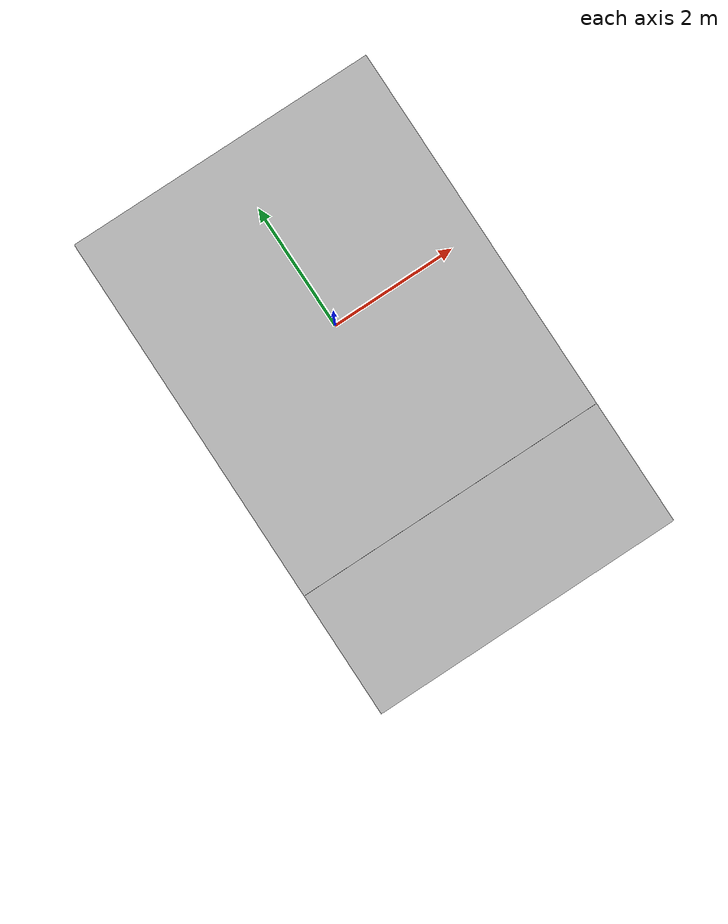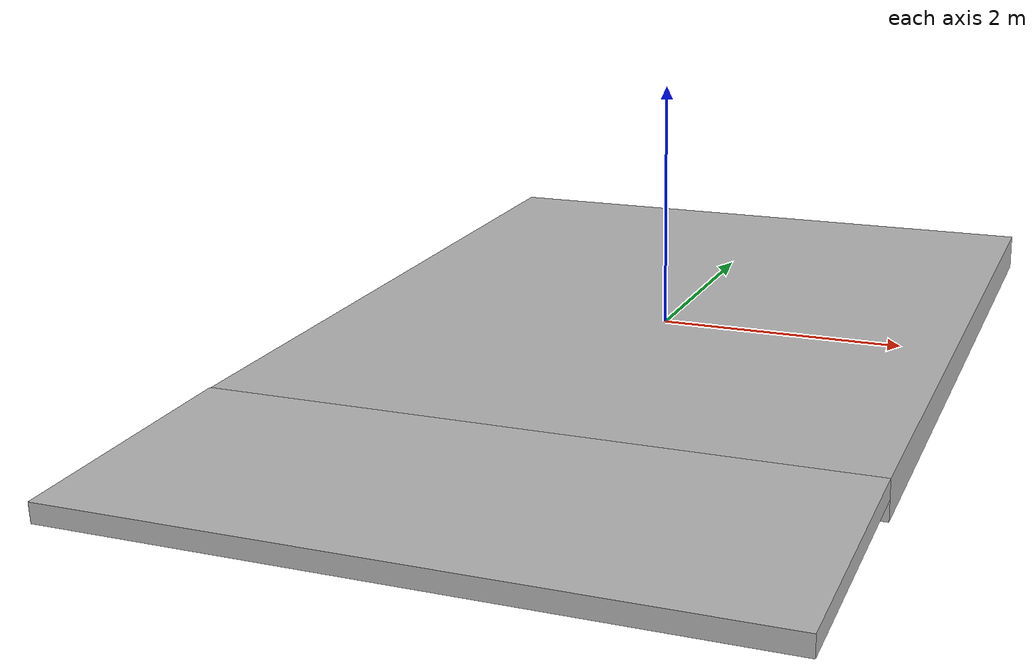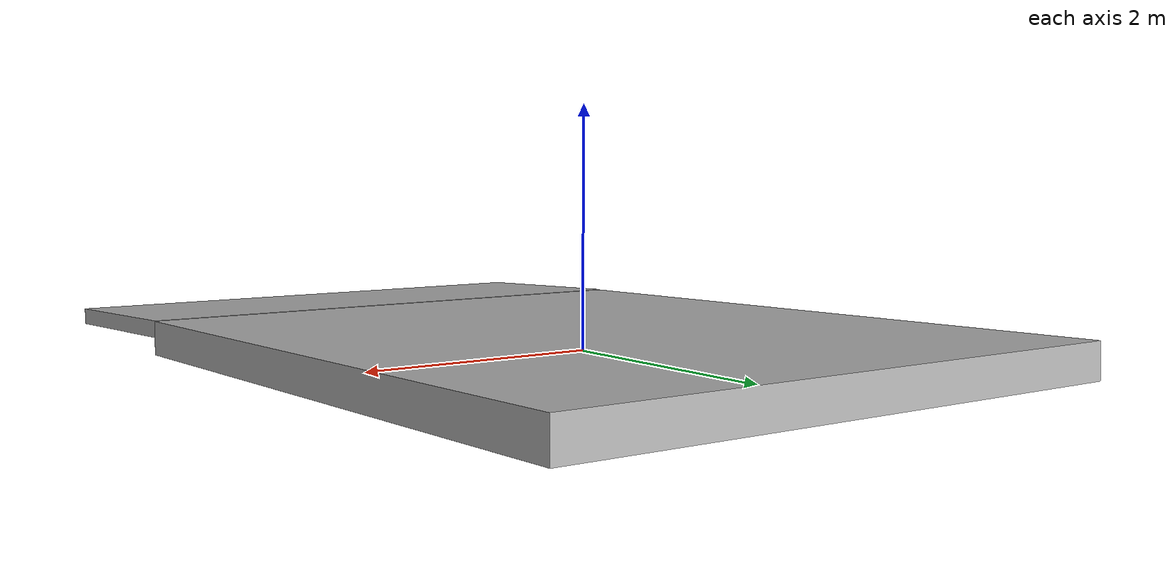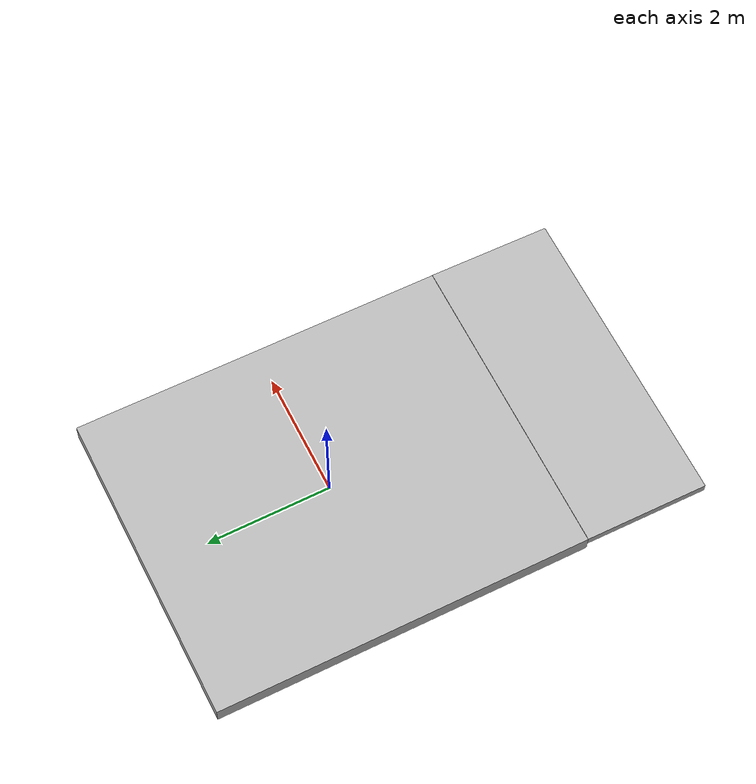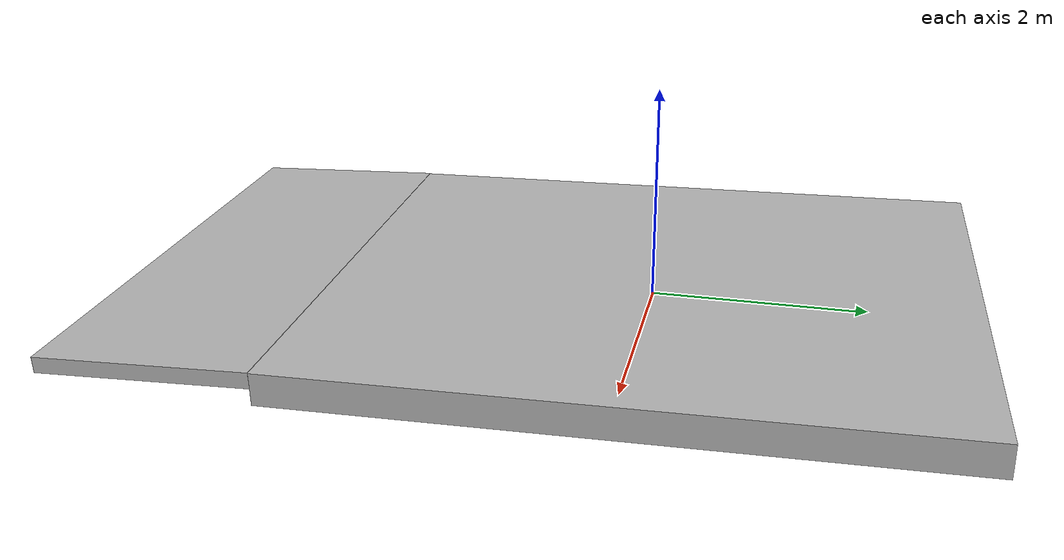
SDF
<?xml version="1.0" ?>
<sdf version="1.5">
  <model name="driveway">
    <static>true</static>
    <link name="link">
      <collision name="collision_1">
        <pose>0 0 0.02 0.02 0 0</pose>
        <geometry>
          <box>
            <size>5 6 .3</size>
          </box>
        </geometry>
        <surface>
          <friction>
            <ode>
              <mu>100</mu>
              <mu2>50</mu2>
            </ode>
            <torsional>
              <ode/>
            </torsional>
          </friction>
          <contact>
            <ode/>
          </contact>
          <bounce/>
        </surface>
        <max_contacts>10</max_contacts>
      </collision>
      <collision name="collision_2">
        <pose>0 -4 0 0.04 0 0</pose>
        <geometry>
          <box>
            <size>5 2 .15</size>
          </box>
        </geometry>
        <surface>
          <friction>
            <ode>
              <mu>100</mu>
              <mu2>50</mu2>
            </ode>
            <torsional>
              <ode/>
            </torsional>
          </friction>
          <contact>
            <ode/>
          </contact>
          <bounce/>
        </surface>
        <max_contacts>10</max_contacts>
      </collision>
      <visual name="visual_1">
        <pose>0 0 0.02 0.02 0 0</pose>
        <cast_shadows>false</cast_shadows>
        <geometry>
          <box>
            <size>5 6 .3</size>
          </box>
        </geometry>
        <material>
          <script>
            <uri>model://driveway/materials/scripts</uri>
            <uri>model://driveway/materials/textures</uri>
            <name>Driveway/Concrete</name>
          </script>
        </material>
      </visual>
      <visual name="visual_2">
        <pose>0 -4 0 0.04 0 0</pose>
        <cast_shadows>false</cast_shadows>
        <geometry>
          <box>
            <size>5 2 .15</size>
          </box>
        </geometry>
        <material>
          <script>
            <uri>model://driveway/materials/scripts</uri>
            <uri>model://driveway/materials/textures</uri>
            <name>Driveway/Concrete</name>
          </script>
        </material>
      </visual>
    </link>
  </model>
</sdf>
